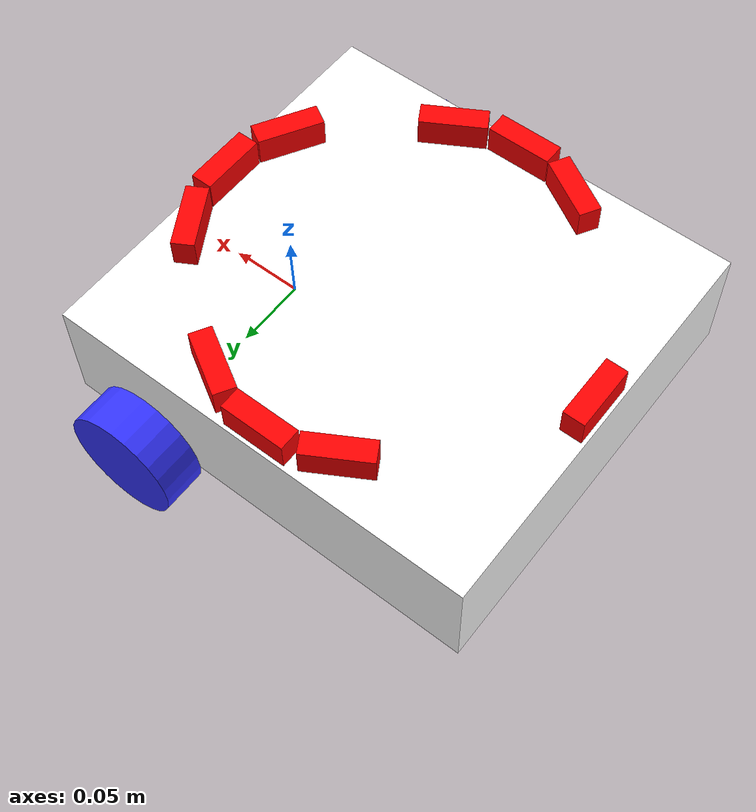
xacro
<?xml version="1.0"?>
<robot xmlns:xacro="http://www.ros.org/wiki/xacro"  name="robot">

    <xacro:include filename="robot_core.xacro"/>

    <xacro:include filename="gazebo_control.xacro"/>
    <!-- Uncommit for ros2_control -->
    <xacro:include filename="ultrasonics.xacro"/>

</robot>

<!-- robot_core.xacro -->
<robot xmlns:xacro="http://www.ros.org/wiki/xacro">

	<xacro:include filename="inertial_macros.xacro"/>

	<material name="white">
   		<color rgba="1 1 1 1"/>
  	</material>

  	<material name="orange">
   		<color rgba="1 0.3 0.1 1"/>
  	</material>

	<material name="red">
   		<color rgba="1 0 0 1"/>
  	</material>

	<material name="blue">
   		<color rgba="0.2 0.2 1 1"/>
  	</material>

	<material name="green">
   		<color rgba="0 0.84 0 1"/>
  	</material>

	<material name="black">
   		<color rgba="0 0 0 1"/>
  	</material>

  	<material name="grey">
   		<color rgba="0.5 0.5 0.5 1"/>
  	</material>

	<!-- BASE LINK -->

	<link name="base_link">

	</link>

	<!-- BASE_FOOTPRINT LINK -->

	<joint name="base_footprint_joint" type="fixed">
		<parent link="base_link"/>
		<child link="base_footprint"/>
		<origin xyz="0 0 0" rpy="0 0 0"/>
	</joint>

	<link name="base_footprint">

	</link>

	<!-- CHASSIS LINK -->

	<joint name="chassis_joint" type="fixed">
		<parent link="base_link"/>
		<child link="chassis"/>
		<origin xyz="-0.09 0 0"/>
	</joint>

	<link name="chassis">
		<visual>
			<origin xyz="0 0 0.04"/>
			<geometry>
				<box size="0.3 0.28 0.08"/>
			</geometry>
			<material name="white"/>
		</visual>
		<collision>
			<origin xyz="0 0 0.04"/>
			<geometry>
				<box size="0.3 0.28 0.08"/>
			</geometry>
			<material name="white"/>
		</collision>
		<xacro:inertial_box mass="1.5" x="0.3" y="0.28" z="0.08">
			<origin xyz="0 0 0.04" rpy="0 0 0"/>
		</xacro:inertial_box>
	</link>

	<gazebo reference="chassis">
		<material>Gazebo/White</material>
	</gazebo>

	<!-- LEFT WHEEL LINK -->

	<joint name="left_wheel_joint" type="continuous">
		<parent link="chassis"/>
		<child link="left_wheel"/>
		<origin xyz="0.09 0.155 0" rpy="-${pi/2} 0 0"/>
		<axis xyz="0 0 1"/>
	</joint>

	<link name="left_wheel">
		<visual>
			<geometry>
				<cylinder radius="0.04" length="0.03"/>
			</geometry>
			<material name="blue"/>
		</visual>
		<collision>
			<geometry>
				<cylinder radius="0.04" length="0.03"/>
			</geometry>
			<material name="blue"/>
		</collision>
		<xacro:inertial_cylinder mass="0.1" radius="0.04" length="0.03">
			<origin xyz="0 0 0" rpy="0 0 0"/>
		</xacro:inertial_cylinder>
	</link>

	<gazebo reference="left_wheel">
		<material>Gazebo/Blue</material>
	</gazebo>

	<!-- RIGHT WHEEL LINK -->

	<joint name="right_wheel_joint" type="continuous">
		<parent link="chassis"/>
		<child link="right_wheel"/>
		<origin xyz="0.09 -0.155 0" rpy="${pi/2} 0 0"/>
		<axis xyz="0 0 -1"/>
	</joint>

	<link name="right_wheel">
		<visual>
			<geometry>
				<cylinder radius="0.04" length="0.03"/>
			</geometry>
			<material name="blue"/>
		</visual>
		<collision>
			<geometry>
				<cylinder radius="0.04" length="0.03"/>
			</geometry>
			<material name="blue"/>
		</collision>
		<xacro:inertial_cylinder mass="0.1" radius="0.04" length="0.03">
			<origin xyz="0 0 0" rpy="0 0 0"/>
		</xacro:inertial_cylinder>
	</link>

	<gazebo reference="right_wheel">
		<material>Gazebo/Blue</material>
	</gazebo>

	<!-- CASTER WHEEL LINK -->

	<joint name="caster_wheel_joint" type="fixed">
		<parent link="chassis"/>
		<child link="caster_wheel"/>
		<origin xyz="-0.1 0 0"/>
	</joint>

	<link name="caster_wheel">
		<visual>
			<geometry>
				<sphere radius="0.04"/>
			</geometry>
			<material name="black"/>
		</visual>
		<collision>
			<geometry>
				<sphere radius="0.04"/>
			</geometry>
			<material name="black"/>
		</collision>
		<xacro:inertial_sphere mass="0.1" radius="0.04">
			<origin xyz="0 0 0" rpy="0 0 0"/>
		</xacro:inertial_sphere>
	</link>

	<gazebo reference="caster_wheel">
		<material>Gazebo/Black</material>
		<mu1 value="0.001"/>
		<mu2 value="0.001"/>
	</gazebo>

</robot>

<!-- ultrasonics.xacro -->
<robot xmlns:xacro="http://www.ros.org/wiki/xacro">

	<!-- CENTRAL GROUP -->

	<!-- S1 central ultrasonic  -->

	<joint name="s1_ultrasonic_joint" type="fixed">
		<parent link="chassis"/>
		<child link="s1_ultrasonic_frame"/>
		<origin xyz="0.14 0 0.09" rpy="0 0 0"/>
	</joint>

	<link name="s1_ultrasonic_frame">
		<visual>
			<geometry>
				<box size="0.015 0.045 0.02"/>
			</geometry>
			<material name="red"/>
		</visual>
		<collision>
			<geometry>
				<box size="0.015 0.045 0.02"/>
			</geometry>
			<material name="red"/>
		</collision>
		<xacro:inertial_box mass="0.01" x="0.015" y="0.045" z="0.02">
			<origin xyz="0 0 0" rpy="0 0 0"/>
		</xacro:inertial_box>
	</link>

	<gazebo reference="s1_ultrasonic_frame">
		<material>Gazebo/Red</material>

        <sensor name="ultrasonic_s1" type="ray">
            <pose> 0 0 0 0 0 0 </pose>
            <visualize>true</visualize>
            <update_rate>5</update_rate>
            <ray>
                <scan>
                    <horizontal>
                        <samples>30</samples>
                        <resolution>1.000000</resolution>
                        <min_angle>-0.12</min_angle>
                        <max_angle>0.12</max_angle>
                    </horizontal>
                    <vertical>
          				<samples>5</samples>
          				<resolution>1.000000</resolution>
          				<min_angle>-0.01</min_angle>
          				<max_angle>0.01</max_angle>
        			</vertical>
                </scan>
                <range>
                    <min>0.02</min>
                    <max>1.5</max>
                    <resolution>0.01</resolution>
                </range>
                <noise>
        			<type>gaussian</type>
        			<mean>0.0</mean>
        			<stddev>0.01</stddev>
      			</noise>
            </ray>
            <plugin name="ultrasonic_s1" filename="libgazebo_ros_ray_sensor.so">
                <ros>
                    <argument>~/out:=front_sonars/s1</argument>
                </ros>
                <output_type>sensor_msgs/Range</output_type>
                <radiation_type>ultrasound</radiation_type>
                <frame_name>s1_ultrasonic_frame</frame_name>
            </plugin>
        </sensor>
    </gazebo>

    <!-- S10 left ultrasonic-->

	<joint name="s10_ultrasonic_joint" type="fixed">
		<parent link="chassis"/>
		<child link="s10_ultrasonic_frame"/>
		<origin xyz="0.1275 0.04665 0.09" rpy="0 0 ${pi/6}"/>
	</joint>

	<link name="s10_ultrasonic_frame">
		<visual>
			<geometry>
				<box size="0.015 0.045 0.02"/>
			</geometry>
			<material name="red"/>
		</visual>
		<collision>
			<geometry>
				<box size="0.015 0.045 0.02"/>
			</geometry>
			<material name="red"/>
		</collision>
		<xacro:inertial_box mass="0.01" x="0.015" y="0.045" z="0.02">
			<origin xyz="0 0 0" rpy="0 0 0"/>
		</xacro:inertial_box>
	</link>

	<gazebo reference="s10_ultrasonic_frame">
		<material>Gazebo/Red</material>

        <sensor name="ultrasonic_s10" type="ray">
            <pose> 0 0 0 0 0 0 </pose>
            <visualize>true</visualize>
            <update_rate>5</update_rate>
            <ray>
                <scan>
                    <horizontal>
                        <samples>30</samples>
                        <resolution>1.000000</resolution>
                        <min_angle>-0.12</min_angle>
                        <max_angle>0.12</max_angle>
                    </horizontal>
                    <vertical>
          				<samples>5</samples>
          				<resolution>1.000000</resolution>
          				<min_angle>-0.01</min_angle>
          				<max_angle>0.01</max_angle>
        			</vertical>
                </scan>
                <range>
                    <min>0.02</min>
                    <max>1.5</max>
                    <resolution>0.01</resolution>
                </range>
                <noise>
        			<type>gaussian</type>
        			<mean>0.0</mean>
        			<stddev>0.01</stddev>
      			</noise>
            </ray>
            <plugin name="ultrasonic_s10" filename="libgazebo_ros_ray_sensor.so">
                <ros>
                    <argument>~/out:=front_sonars/s10</argument>
                </ros>
                <output_type>sensor_msgs/Range</output_type>
                <radiation_type>ultrasound</radiation_type>
                <frame_name>s10_ultrasonic_frame</frame_name>
            </plugin>
        </sensor>
    </gazebo>

    <!-- S2 right ultrasonic -->

	<joint name="s2_ultrasonic_joint" type="fixed">
		<parent link="chassis"/>
		<child link="s2_ultrasonic_frame"/>
		<origin xyz="0.1275 -0.04665 0.09" rpy="0 0 -${pi/6}"/>
	</joint>

	<link name="s2_ultrasonic_frame">
		<visual>
			<geometry>
				<box size="0.015 0.045 0.02"/>
			</geometry>
			<material name="red"/>
		</visual>
		<collision>
			<geometry>
				<box size="0.015 0.045 0.02"/>
			</geometry>
			<material name="red"/>
		</collision>
		<xacro:inertial_box mass="0.01" x="0.015" y="0.045" z="0.02">
			<origin xyz="0 0 0" rpy="0 0 0"/>
		</xacro:inertial_box>
	</link>

	<gazebo reference="s2_ultrasonic_frame">
		<material>Gazebo/Red</material>

        <sensor name="ultrasonic_s2" type="ray">
            <pose> 0 0 0 0 0 0 </pose>
            <visualize>true</visualize>
            <update_rate>5</update_rate>
            <ray>
                <scan>
                    <horizontal>
                        <samples>30</samples>
                        <resolution>1.000000</resolution>
                        <min_angle>-0.12</min_angle>
                        <max_angle>0.12</max_angle>
                    </horizontal>
                    <vertical>
          				<samples>5</samples>
          				<resolution>1.000000</resolution>
          				<min_angle>-0.01</min_angle>
          				<max_angle>0.01</max_angle>
        			</vertical>
                </scan>
                <range>
                    <min>0.02</min>
                    <max>1.5</max>
                    <resolution>0.01</resolution>
                </range>
                <noise>
        			<type>gaussian</type>
        			<mean>0.0</mean>
        			<stddev>0.01</stddev>
      			</noise>
            </ray>
            <plugin name="ultrasonic_s2" filename="libgazebo_ros_ray_sensor.so">
                <ros>
                    <argument>~/out:=front_sonars/s2</argument>
                </ros>
                <output_type>sensor_msgs/Range</output_type>
                <radiation_type>ultrasound</radiation_type>
                <frame_name>s2_ultrasonic_frame</frame_name>
            </plugin>
        </sensor>
    </gazebo>

    <!-- RIGHT GROUP -->

	<!-- S4 central ultrasonic  -->

	<joint name="s4_ultrasonic_joint" type="fixed">
		<parent link="chassis"/>
		<child link="s4_ultrasonic_frame"/>
		<origin xyz="0 -0.13 0.09" rpy="0 0 -${pi/2}"/>
	</joint>

	<link name="s4_ultrasonic_frame">
		<visual>
			<geometry>
				<box size="0.015 0.045 0.02"/>
			</geometry>
			<material name="red"/>
		</visual>
		<collision>
			<geometry>
				<box size="0.015 0.045 0.02"/>
			</geometry>
			<material name="red"/>
		</collision>
		<xacro:inertial_box mass="0.01" x="0.015" y="0.045" z="0.02">
			<origin xyz="0 0 0" rpy="0 0 0"/>
		</xacro:inertial_box>
	</link>

	<gazebo reference="s4_ultrasonic_frame">
		<material>Gazebo/Red</material>

        <sensor name="ultrasonic_s4" type="ray">
            <pose> 0 0 0 0 0 0 </pose>
            <visualize>true</visualize>
            <update_rate>5</update_rate>
            <ray>
                <scan>
                    <horizontal>
                        <samples>30</samples>
                        <resolution>1.000000</resolution>
                        <min_angle>-0.12</min_angle>
                        <max_angle>0.12</max_angle>
                    </horizontal>
                    <vertical>
          				<samples>5</samples>
          				<resolution>1.000000</resolution>
          				<min_angle>-0.01</min_angle>
          				<max_angle>0.01</max_angle>
        			</vertical>
                </scan>
                <range>
                    <min>0.02</min>
                    <max>1.5</max>
                    <resolution>0.01</resolution>
                </range>
                <noise>
        			<type>gaussian</type>
        			<mean>0.0</mean>
        			<stddev>0.01</stddev>
      			</noise>
            </ray>
            <plugin name="ultrasonic_s4" filename="libgazebo_ros_ray_sensor.so">
                <ros>
                    <argument>~/out:=right_sonars/s4</argument>
                </ros>
                <output_type>sensor_msgs/Range</output_type>
                <radiation_type>ultrasound</radiation_type>
                <frame_name>s4_ultrasonic_frame</frame_name>
            </plugin>
        </sensor>
    </gazebo>

    <!-- S3 left ultrasonic  -->

	<joint name="s3_ultrasonic_joint" type="fixed">
		<parent link="chassis"/>
		<child link="s3_ultrasonic_frame"/>
		<origin xyz="0.04665 -0.11725 0.09" rpy="0 0 -${pi/3}"/>
	</joint>

	<link name="s3_ultrasonic_frame">
		<visual>
			<geometry>
				<box size="0.015 0.045 0.02"/>
			</geometry>
			<material name="red"/>
		</visual>
		<collision>
			<geometry>
				<box size="0.015 0.045 0.02"/>
			</geometry>
			<material name="red"/>
		</collision>
		<xacro:inertial_box mass="0.01" x="0.015" y="0.045" z="0.02">
			<origin xyz="0 0 0" rpy="0 0 0"/>
		</xacro:inertial_box>
	</link>

	<gazebo reference="s3_ultrasonic_frame">
		<material>Gazebo/Red</material>

        <sensor name="ultrasonic_s3" type="ray">
            <pose> 0 0 0 0 0 0 </pose>
            <visualize>true</visualize>
            <update_rate>5</update_rate>
            <ray>
                <scan>
                    <horizontal>
                        <samples>30</samples>
                        <resolution>1.000000</resolution>
                        <min_angle>-0.12</min_angle>
                        <max_angle>0.12</max_angle>
                    </horizontal>
                    <vertical>
          				<samples>5</samples>
          				<resolution>1.000000</resolution>
          				<min_angle>-0.01</min_angle>
          				<max_angle>0.01</max_angle>
        			</vertical>
                </scan>
                <range>
                    <min>0.02</min>
                    <max>1.5</max>
                    <resolution>0.01</resolution>
                </range>
                <noise>
        			<type>gaussian</type>
        			<mean>0.0</mean>
        			<stddev>0.01</stddev>
      			</noise>
            </ray>
            <plugin name="ultrasonic_s3" filename="libgazebo_ros_ray_sensor.so">
                <ros>
                    <argument>~/out:=right_sonars/s3</argument>
                </ros>
                <output_type>sensor_msgs/Range</output_type>
                <radiation_type>ultrasound</radiation_type>
                <frame_name>s3_ultrasonic_frame</frame_name>
            </plugin>
        </sensor>
    </gazebo>

    <!-- S5 right ultrasonic  -->

	<joint name="s5_ultrasonic_joint" type="fixed">
		<parent link="chassis"/>
		<child link="s5_ultrasonic_frame"/>
		<origin xyz="-0.04665 -0.11725 0.09" rpy="0 0 -${2*pi/3}"/>
	</joint>

	<link name="s5_ultrasonic_frame">
		<visual>
			<geometry>
				<box size="0.015 0.045 0.02"/>
			</geometry>
			<material name="red"/>
		</visual>
		<collision>
			<geometry>
				<box size="0.015 0.045 0.02"/>
			</geometry>
			<material name="red"/>
		</collision>
		<xacro:inertial_box mass="0.01" x="0.015" y="0.045" z="0.02">
			<origin xyz="0 0 0" rpy="0 0 0"/>
		</xacro:inertial_box>
	</link>

	<gazebo reference="s5_ultrasonic_frame">
		<material>Gazebo/Red</material>

        <sensor name="ultrasonic_s5" type="ray">
            <pose> 0 0 0 0 0 0 </pose>
            <visualize>true</visualize>
            <update_rate>5</update_rate>
            <ray>
                <scan>
                    <horizontal>
                        <samples>30</samples>
                        <resolution>1.000000</resolution>
                        <min_angle>-0.12</min_angle>
                        <max_angle>0.12</max_angle>
                    </horizontal>
                    <vertical>
          				<samples>5</samples>
          				<resolution>1.000000</resolution>
          				<min_angle>-0.01</min_angle>
          				<max_angle>0.01</max_angle>
        			</vertical>
                </scan>
                <range>
                    <min>0.02</min>
                    <max>1.5</max>
                    <resolution>0.01</resolution>
                </range>
                <noise>
        			<type>gaussian</type>
        			<mean>0.0</mean>
        			<stddev>0.01</stddev>
      			</noise>
            </ray>
            <plugin name="ultrasonic_s5" filename="libgazebo_ros_ray_sensor.so">
                <ros>
                    <argument>~/out:=right_sonars/s5</argument>
                </ros>
                <output_type>sensor_msgs/Range</output_type>
                <radiation_type>ultrasound</radiation_type>
                <frame_name>s5_ultrasonic_frame</frame_name>
            </plugin>
        </sensor>
    </gazebo>

    <!-- LEFT GROUP -->

	<!-- S8 central ultrasonic  -->

	<joint name="s8_ultrasonic_joint" type="fixed">
		<parent link="chassis"/>
		<child link="s8_ultrasonic_frame"/>
		<origin xyz="0 0.13 0.09" rpy="0 0 ${pi/2}"/>
	</joint>

	<link name="s8_ultrasonic_frame">
		<visual>
			<geometry>
				<box size="0.015 0.045 0.02"/>
			</geometry>
			<material name="red"/>
		</visual>
		<collision>
			<geometry>
				<box size="0.015 0.045 0.02"/>
			</geometry>
			<material name="red"/>
		</collision>
		<xacro:inertial_box mass="0.01" x="0.015" y="0.045" z="0.02">
			<origin xyz="0 0 0" rpy="0 0 0"/>
		</xacro:inertial_box>
	</link>

	<gazebo reference="s8_ultrasonic_frame">
		<material>Gazebo/Red</material>

        <sensor name="ultrasonic_s8" type="ray">
            <pose> 0 0 0 0 0 0 </pose>
            <visualize>true</visualize>
            <update_rate>5</update_rate>
            <ray>
                <scan>
                    <horizontal>
                        <samples>30</samples>
                        <resolution>1.000000</resolution>
                        <min_angle>-0.12</min_angle>
                        <max_angle>0.12</max_angle>
                    </horizontal>
                    <vertical>
          				<samples>5</samples>
          				<resolution>1.000000</resolution>
          				<min_angle>-0.01</min_angle>
          				<max_angle>0.01</max_angle>
        			</vertical>
                </scan>
                <range>
                    <min>0.02</min>
                    <max>1.5</max>
                    <resolution>0.01</resolution>
                </range>
                <noise>
        			<type>gaussian</type>
        			<mean>0.0</mean>
        			<stddev>0.01</stddev>
      			</noise>
            </ray>
            <plugin name="ultrasonic_s8" filename="libgazebo_ros_ray_sensor.so">
                <ros>
                    <argument>~/out:=left_sonars/s8</argument>
                </ros>
                <output_type>sensor_msgs/Range</output_type>
                <radiation_type>ultrasound</radiation_type>
                <frame_name>s8_ultrasonic_frame</frame_name>
            </plugin>
        </sensor>
    </gazebo>

    <!-- S7 left ultrasonic  -->

	<joint name="s7_ultrasonic_joint" type="fixed">
		<parent link="chassis"/>
		<child link="s7_ultrasonic_frame"/>
		<origin xyz="-0.04665 0.11725 0.09" rpy="0 0 ${2*pi/3}"/>
	</joint>

	<link name="s7_ultrasonic_frame">
		<visual>
			<geometry>
				<box size="0.015 0.045 0.02"/>
			</geometry>
			<material name="red"/>
		</visual>
		<collision>
			<geometry>
				<box size="0.015 0.045 0.02"/>
			</geometry>
			<material name="red"/>
		</collision>
		<xacro:inertial_box mass="0.01" x="0.015" y="0.045" z="0.02">
			<origin xyz="0 0 0" rpy="0 0 0"/>
		</xacro:inertial_box>
	</link>

	<gazebo reference="s7_ultrasonic_frame">
		<material>Gazebo/Red</material>

        <sensor name="ultrasonic_s7" type="ray">
            <pose> 0 0 0 0 0 0 </pose>
            <visualize>true</visualize>
            <update_rate>5</update_rate>
            <ray>
                <scan>
                    <horizontal>
                        <samples>30</samples>
                        <resolution>1.000000</resolution>
                        <min_angle>-0.12</min_angle>
                        <max_angle>0.12</max_angle>
                    </horizontal>
                    <vertical>
          				<samples>5</samples>
          				<resolution>1.000000</resolution>
          				<min_angle>-0.01</min_angle>
          				<max_angle>0.01</max_angle>
        			</vertical>
                </scan>
                <range>
                    <min>0.02</min>
                    <max>1.5</max>
                    <resolution>0.01</resolution>
                </range>
                <noise>
        			<type>gaussian</type>
        			<mean>0.0</mean>
        			<stddev>0.01</stddev>
      			</noise>
            </ray>
            <plugin name="ultrasonic_s7" filename="libgazebo_ros_ray_sensor.so">
                <ros>
                    <argument>~/out:=left_sonars/s7</argument>
                </ros>
                <output_type>sensor_msgs/Range</output_type>
                <radiation_type>ultrasound</radiation_type>
                <frame_name>s7_ultrasonic_frame</frame_name>
            </plugin>
        </sensor>
    </gazebo>

    <!-- S9 right ultrasonic  -->

	<joint name="s9_ultrasonic_joint" type="fixed">
		<parent link="chassis"/>
		<child link="s9_ultrasonic_frame"/>
		<origin xyz="0.04665 0.11725 0.09" rpy="0 0 ${pi/3}"/>
	</joint>

	<link name="s9_ultrasonic_frame">
		<visual>
			<geometry>
				<box size="0.015 0.045 0.02"/>
			</geometry>
			<material name="red"/>
		</visual>
		<collision>
			<geometry>
				<box size="0.015 0.045 0.02"/>
			</geometry>
			<material name="red"/>
		</collision>
		<xacro:inertial_box mass="0.01" x="0.015" y="0.045" z="0.02">
			<origin xyz="0 0 0" rpy="0 0 0"/>
		</xacro:inertial_box>
	</link>

	<gazebo reference="s9_ultrasonic_frame">
		<material>Gazebo/Red</material>

        <sensor name="ultrasonic_s9" type="ray">
            <pose> 0 0 0 0 0 0 </pose>
            <visualize>true</visualize>
            <update_rate>5</update_rate>
            <ray>
                <scan>
                    <horizontal>
                        <samples>30</samples>
                        <resolution>1.000000</resolution>
                        <min_angle>-0.12</min_angle>
                        <max_angle>0.12</max_angle>
                    </horizontal>
                    <vertical>
          				<samples>5</samples>
          				<resolution>1.000000</resolution>
          				<min_angle>-0.01</min_angle>
          				<max_angle>0.01</max_angle>
        			</vertical>
                </scan>
                <range>
                    <min>0.02</min>
                    <max>1.5</max>
                    <resolution>0.01</resolution>
                </range>
                <noise>
        			<type>gaussian</type>
        			<mean>0.0</mean>
        			<stddev>0.01</stddev>
      			</noise>
            </ray>
            <plugin name="ultrasonic_s9" filename="libgazebo_ros_ray_sensor.so">
                <ros>
                    <argument>~/out:=left_sonars/s9</argument>
                </ros>
                <output_type>sensor_msgs/Range</output_type>
                <radiation_type>ultrasound</radiation_type>
                <frame_name>s9_ultrasonic_frame</frame_name>
            </plugin>
        </sensor>
    </gazebo>

    <!-- BACK SENSOR S6 -->

	<joint name="s6_ultrasonic_joint" type="fixed">
		<parent link="chassis"/>
		<child link="s6_ultrasonic_frame"/>
		<origin xyz="-0.14 0 0.09" rpy="0 0 ${pi}"/>
	</joint>

	<link name="s6_ultrasonic_frame">
		<visual>
			<geometry>
				<box size="0.015 0.045 0.02"/>
			</geometry>
			<material name="red"/>
		</visual>
		<collision>
			<geometry>
				<box size="0.015 0.045 0.02"/>
			</geometry>
			<material name="red"/>
		</collision>
		<xacro:inertial_box mass="0.01" x="0.015" y="0.045" z="0.02">
			<origin xyz="0 0 0" rpy="0 0 0"/>
		</xacro:inertial_box>
	</link>

	<gazebo reference="s6_ultrasonic_frame">
		<material>Gazebo/Red</material>

        <sensor name="ultrasonic_s6" type="ray">
            <pose> 0 0 0 0 0 0 </pose>
            <visualize>true</visualize>
            <update_rate>5</update_rate>
            <ray>
                <scan>
                    <horizontal>
                        <samples>30</samples>
                        <resolution>1.000000</resolution>
                        <min_angle>-0.12</min_angle>
                        <max_angle>0.12</max_angle>
                    </horizontal>
                    <vertical>
          				<samples>5</samples>
          				<resolution>1.000000</resolution>
          				<min_angle>-0.01</min_angle>
          				<max_angle>0.01</max_angle>
        			</vertical>
                </scan>
                <range>
                    <min>0.02</min>
                    <max>1.5</max>
                    <resolution>0.01</resolution>
                </range>
                <noise>
        			<type>gaussian</type>
        			<mean>0.0</mean>
        			<stddev>0.01</stddev>
      			</noise>
            </ray>
            <plugin name="ultrasonic_s6" filename="libgazebo_ros_ray_sensor.so">
                <ros>
                    <argument>~/out:=back_sonar/s6</argument>
                </ros>
                <output_type>sensor_msgs/Range</output_type>
                <radiation_type>ultrasound</radiation_type>
                <frame_name>s6_ultrasonic_frame</frame_name>
            </plugin>
        </sensor>
    </gazebo>

</robot>
